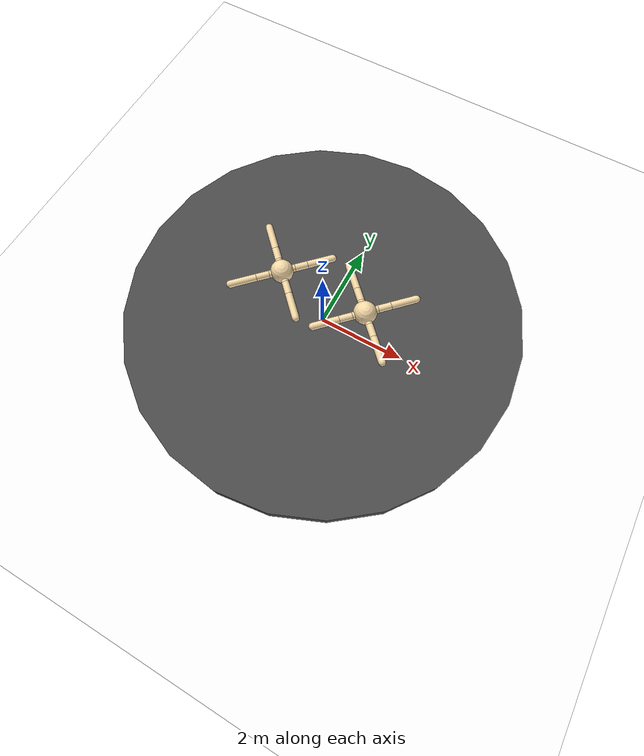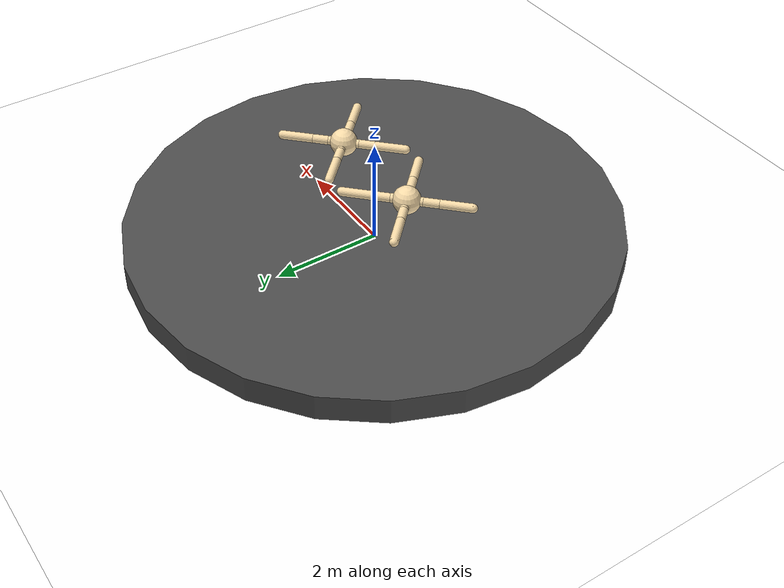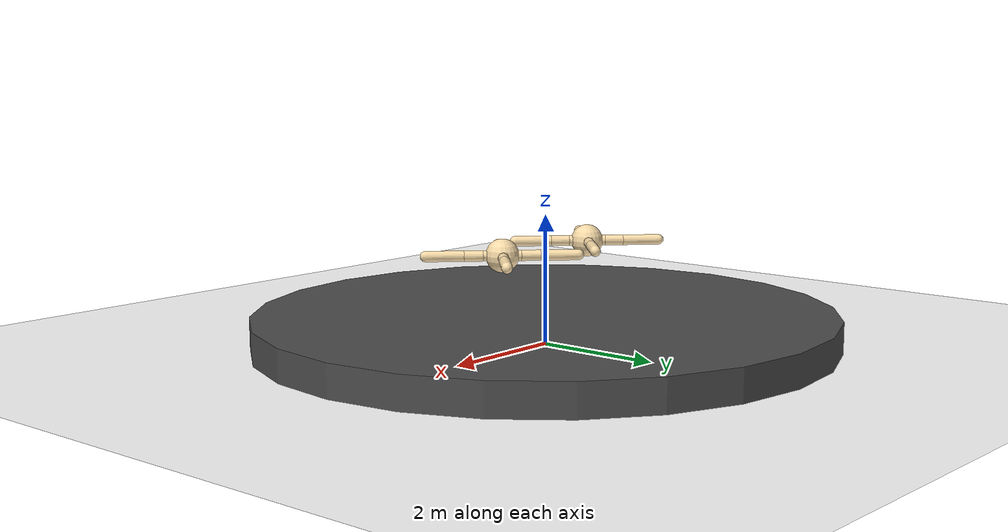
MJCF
<mujoco model="mutiagent_world">
  <compiler angle="degree" coordinate="local" inertiafromgeom="true" />
  <option integrator="RK4" timestep="0.003" solver="PGS" iterations="1000" />
  <default>
    <joint armature="1" damping="1" limited="true" />
  <default class="agent0"><joint armature="1" damping="1" limited="true" />
    <geom conaffinity="0" condim="3" density="5.0" friction="1 0.5 0.5" margin="0.01" rgba="0.98 0.87 0.67 1" material="geom" contype="1" />
  </default><default class="agent1"><joint armature="1" damping="1" limited="true" />
    <geom conaffinity="1" condim="3" density="5.0" friction="1 0.5 0.5" margin="0.01" rgba="0.98 0.87 0.67 1" material="geom" contype="0" />
  </default></default>
  <visual>
    <headlight ambient=".1 .1 .1" diffuse=".6 .6 .6" specular="0.3 0.3 0.3" />
    <map znear=".01" />
    <quality shadowsize="16384" />
  </visual>
  <asset>
    <texture builtin="gradient" height="100" rgb1="1 1 1" rgb2="0 0 0" type="skybox" width="100" />
    <texture builtin="flat" height="1278" mark="cross" markrgb="0 0 0" name="texgeom" random="0.01" rgb1="0.8 0.6 0.4" rgb2="0.8 0.6 0.4" type="cube" width="127" />
    <texture builtin="checker" height="100" name="texplane" rgb1="0.5 0.5 0.5" rgb2="0.5 0.5 0.5" type="2d" width="100" markrgb="0.2 0.2 0.2" mark="edge" />
    <texture name="MatPlane" type="2d" builtin="checker" rgb1=".5 .5 .5" rgb2=".5 .5 .5" width="300" height="300" mark="edge" markrgb="0.1 0.1 0.1" />
    <material name="MatPlane" texture="MatPlane" texrepeat="2 2" texuniform="true" reflectance=".2" />
    <material name="geom" texture="texgeom" texuniform="true" />
  </asset>
  <worldbody>
    <light cutoff="100" diffuse="1 1 1" dir="-0 0 -1.3" directional="true" exponent="1" pos="0 0 1.3" specular=".1 .1 .1" />
    <geom contype="1" conaffinity="1" friction="1 .1 .1" condim="3" material="MatPlane" name="floor" pos="0 0 0" rgba="1 1 1 1" size="20 20 0.125" type="plane" />
    <geom fromto="4 -5 0  4 +5 0" name="rightgoal" rgba="0.6 0.0 0.0 0" size=".03" type="cylinder" />
    <geom fromto="-4 -5 0  -4 +5 0" name="leftgoal" rgba="0.6 0.0 0.0 0" size=".03" type="cylinder" />
    <geom conaffinity="1" condim="3" contype="1" friction="1 .1 .1" name="arena" size="4.5 .25" type="cylinder" pos="0 0 0.25" rgba="0.3 0.3 0.3 1" />
  <body name="agent0/0" pos="-1 0 1.5" euler="0 0 0">
    <geom pos="0 0 0" size="0.25" type="sphere" class="agent0" name="agent0/anon3617693704" />
    <joint armature="0" damping="0" limited="false" margin="0.01" name="agent0/0_joint" pos="0 0 0" range="-30 30" type="free" />
    <body name="agent0/1" pos="0 0 0">
      <geom fromto="0 0 0 0.2 0.2 0" size="0.08" type="capsule" class="agent0" name="agent0/anon8501003736" />
      <body name="agent0/11" pos="0.2 0.2 0">
        <joint axis="0 0 1" name="agent0/11_joint" pos="0 0 0" range="-30 30" type="hinge" />
        <geom fromto="0.0 0.0 0.0 0.2 0.2 0.0" size="0.08" type="capsule" class="agent0" name="agent0/anon2163050540" />
        <body name="agent0/111" pos="0.2 0.2 0">
          <geom fromto="0 0 0 0.4 0.4 0" size="0.08" type="capsule" class="agent0" name="agent0/anon9667682704" />
          <joint axis="-0.707107 0.707107 0" name="agent0/111_joint" pos="0 0 0" range="30 70" type="hinge" />
        </body>
      </body>
    </body>
    <body name="agent0/2" pos="0 0 0">
      <geom fromto="0 0 0 -0.2 0.2 0" size="0.08" type="capsule" class="agent0" name="agent0/anon6526899510" />
      <body name="agent0/12" pos="-0.2 0.2 0">
        <joint axis="0 0 1" name="agent0/12_joint" pos="0 0 0" range="-30 30" type="hinge" />
        <geom fromto="0.0 0.0 0.0 -0.2 0.2 0.0" size="0.08" type="capsule" class="agent0" name="agent0/anon2336117160" />
        <body name="agent0/112" pos="-0.2 0.2 0">
          <geom fromto="0 0 0 -0.4 0.4 0" size="0.08" type="capsule" class="agent0" name="agent0/anon7803232127" />
          <joint axis="-0.707107 -0.707107 0" name="agent0/112_joint" pos="0 0 0" range="30 70" type="hinge" />
        </body>
      </body>
    </body>

    <body name="agent0/3" pos="0 0 0">
      <geom fromto="0 0 0 -0.2 -0.2 0" size="0.08" type="capsule" class="agent0" name="agent0/anon6525082215" />
      <body name="agent0/13" pos="-0.2 -0.2 0">
        <joint axis="0 0 1" name="agent0/13_joint" pos="0 0 0" range="-30 30" type="hinge" />
        <geom fromto="0 0 0 -0.2 -0.2 0" size="0.08" type="capsule" class="agent0" name="agent0/anon9493545235" />
        <body name="agent0/113" pos="-0.2 -0.2 0">
          <geom fromto="0 0 0 -0.4 -0.4 0" size="0.08" type="capsule" class="agent0" name="agent0/anon3540309144" />
          <joint axis="0.707107 -0.707107 0" name="agent0/113_joint" pos="0 0 0" range="30 70" type="hinge" />
        </body>
      </body>
    </body>

    <body name="agent0/4" pos="0 0 0">
      <geom fromto="0 0 0 0.2 -0.2 0" size="0.08" type="capsule" class="agent0" name="agent0/anon7540222680" />
      <body name="agent0/14" pos="0.2 -0.2 0">
        <joint axis="0 0 1" name="agent0/14_joint" pos="0 0 0" range="-30 30" type="hinge" />
        <geom fromto="0 0 0 0.2 -0.2 0" size="0.08" type="capsule" class="agent0" name="agent0/anon5240591656" />
        <body name="agent0/114" pos="0.2 -0.2 0">
          <geom fromto="0 0 0 0.4 -0.4 0" size="0.08" type="capsule" class="agent0" name="agent0/anon4714348348" />
          <joint axis="0.707107 0.707107 0" name="agent0/114_joint" pos="0 0 0" range="30 70" type="hinge" />
        </body>
      </body>
    </body>
  </body>

  <body name="agent1/0" pos="1 0 1.5" euler="0 0 180">
    <geom pos="0 0 0" size="0.25" type="sphere" class="agent1" name="agent1/anon2306549595" />
    <joint armature="0" damping="0" limited="false" margin="0.01" name="agent1/0_joint" pos="0 0 0" range="-30 30" type="free" />
    <body name="agent1/1" pos="0 0 0">
      <geom fromto="0 0 0 0.2 0.2 0" size="0.08" type="capsule" class="agent1" name="agent1/anon621807675" />
      <body name="agent1/11" pos="0.2 0.2 0">
        <joint axis="0 0 1" name="agent1/11_joint" pos="0 0 0" range="-30 30" type="hinge" />
        <geom fromto="0.0 0.0 0.0 0.2 0.2 0.0" size="0.08" type="capsule" class="agent1" name="agent1/anon4236525270" />
        <body name="agent1/111" pos="0.2 0.2 0">
          <geom fromto="0 0 0 0.4 0.4 0" size="0.08" type="capsule" class="agent1" name="agent1/anon4067024635" />
          <joint axis="-0.707107 0.707107 0" name="agent1/111_joint" pos="0 0 0" range="30 70" type="hinge" />
        </body>
      </body>
    </body>
    <body name="agent1/2" pos="0 0 0">
      <geom fromto="0 0 0 -0.2 0.2 0" size="0.08" type="capsule" class="agent1" name="agent1/anon4440969505" />
      <body name="agent1/12" pos="-0.2 0.2 0">
        <joint axis="0 0 1" name="agent1/12_joint" pos="0 0 0" range="-30 30" type="hinge" />
        <geom fromto="0.0 0.0 0.0 -0.2 0.2 0.0" size="0.08" type="capsule" class="agent1" name="agent1/anon6436148966" />
        <body name="agent1/112" pos="-0.2 0.2 0">
          <geom fromto="0 0 0 -0.4 0.4 0" size="0.08" type="capsule" class="agent1" name="agent1/anon5131287312" />
          <joint axis="-0.707107 -0.707107 0" name="agent1/112_joint" pos="0 0 0" range="30 70" type="hinge" />
        </body>
      </body>
    </body>

    <body name="agent1/3" pos="0 0 0">
      <geom fromto="0 0 0 -0.2 -0.2 0" size="0.08" type="capsule" class="agent1" name="agent1/anon260589467" />
      <body name="agent1/13" pos="-0.2 -0.2 0">
        <joint axis="0 0 1" name="agent1/13_joint" pos="0 0 0" range="-30 30" type="hinge" />
        <geom fromto="0 0 0 -0.2 -0.2 0" size="0.08" type="capsule" class="agent1" name="agent1/anon5945875729" />
        <body name="agent1/113" pos="-0.2 -0.2 0">
          <geom fromto="0 0 0 -0.4 -0.4 0" size="0.08" type="capsule" class="agent1" name="agent1/anon4309234531" />
          <joint axis="0.707107 -0.707107 0" name="agent1/113_joint" pos="0 0 0" range="30 70" type="hinge" />
        </body>
      </body>
    </body>

    <body name="agent1/4" pos="0 0 0">
      <geom fromto="0 0 0 0.2 -0.2 0" size="0.08" type="capsule" class="agent1" name="agent1/anon8919721462" />
      <body name="agent1/14" pos="0.2 -0.2 0">
        <joint axis="0 0 1" name="agent1/14_joint" pos="0 0 0" range="-30 30" type="hinge" />
        <geom fromto="0 0 0 0.2 -0.2 0" size="0.08" type="capsule" class="agent1" name="agent1/anon4375121794" />
        <body name="agent1/114" pos="0.2 -0.2 0">
          <geom fromto="0 0 0 0.4 -0.4 0" size="0.08" type="capsule" class="agent1" name="agent1/anon306977276" />
          <joint axis="0.707107 0.707107 0" name="agent1/114_joint" pos="0 0 0" range="30 70" type="hinge" />
        </body>
      </body>
    </body>
  </body>

  </worldbody>
<actuator>
    <motor ctrllimited="true" ctrlrange="-1.0 1.0" joint="agent0/11_joint" gear="150" name="agent0/11_joint" class="agent0" />
    <motor ctrllimited="true" ctrlrange="-1.0 1.0" joint="agent0/12_joint" gear="150" name="agent0/12_joint" class="agent0" />
    <motor ctrllimited="true" ctrlrange="-1.0 1.0" joint="agent0/13_joint" gear="150" name="agent0/13_joint" class="agent0" />
    <motor ctrllimited="true" ctrlrange="-1.0 1.0" joint="agent0/14_joint" gear="150" name="agent0/14_joint" class="agent0" />
    <motor ctrllimited="true" ctrlrange="-1.0 1.0" joint="agent0/111_joint" gear="150" name="agent0/111_joint" class="agent0" />
    <motor ctrllimited="true" ctrlrange="-1.0 1.0" joint="agent0/112_joint" gear="150" name="agent0/112_joint" class="agent0" />
    <motor ctrllimited="true" ctrlrange="-1.0 1.0" joint="agent0/113_joint" gear="150" name="agent0/113_joint" class="agent0" />
    <motor ctrllimited="true" ctrlrange="-1.0 1.0" joint="agent0/114_joint" gear="150" name="agent0/114_joint" class="agent0" />
  <motor ctrllimited="true" ctrlrange="-1.0 1.0" joint="agent1/11_joint" gear="150" name="agent1/11_joint" class="agent1" />
    <motor ctrllimited="true" ctrlrange="-1.0 1.0" joint="agent1/12_joint" gear="150" name="agent1/12_joint" class="agent1" />
    <motor ctrllimited="true" ctrlrange="-1.0 1.0" joint="agent1/13_joint" gear="150" name="agent1/13_joint" class="agent1" />
    <motor ctrllimited="true" ctrlrange="-1.0 1.0" joint="agent1/14_joint" gear="150" name="agent1/14_joint" class="agent1" />
    <motor ctrllimited="true" ctrlrange="-1.0 1.0" joint="agent1/111_joint" gear="150" name="agent1/111_joint" class="agent1" />
    <motor ctrllimited="true" ctrlrange="-1.0 1.0" joint="agent1/112_joint" gear="150" name="agent1/112_joint" class="agent1" />
    <motor ctrllimited="true" ctrlrange="-1.0 1.0" joint="agent1/113_joint" gear="150" name="agent1/113_joint" class="agent1" />
    <motor ctrllimited="true" ctrlrange="-1.0 1.0" joint="agent1/114_joint" gear="150" name="agent1/114_joint" class="agent1" />
  </actuator>
  </mujoco>
